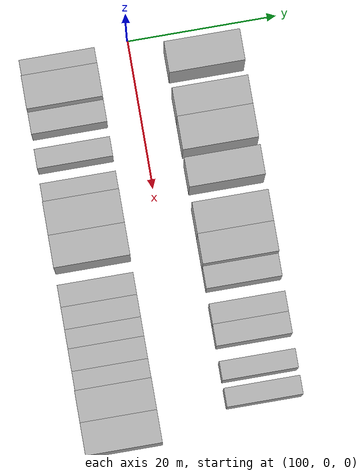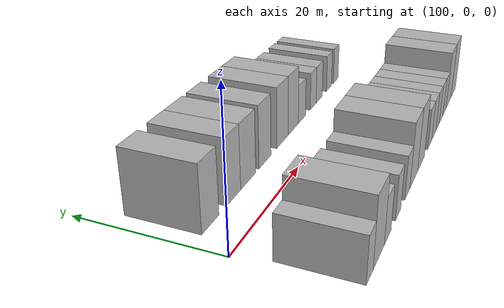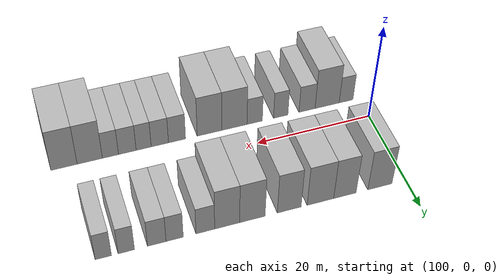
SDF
<sdf version="1.6">
 <world name="default">
  <model name="building_26">
   <static>1</static>
   <pose>104.4458 9.5000 0 0.000000 0.000000 1.570796</pose>
   <link name="link">
    <pose>0 0 4.50 0 0 0</pose>
    <collision name="collision"><geometry><box><size>10.0000 4.1483 9.0000</size></box></geometry></collision>
    <visual name="visual">
     <cast_shadows>0</cast_shadows>
     <geometry><box><size>10.0000 4.1483 9.0000</size></box></geometry>
     <material>
      <script>
       <uri>model://HANNAS_wall/materials/scripts</uri>
       <uri>model://HANNAS_wall/materials/textures</uri>
       <name>vrc/HANNAS_wall</name>
      </script>
     </material>
    </visual>
   </link>
  </model>
  <model name="building_27">
   <static>1</static>
   <pose>110.4118 9.5000 0 0.000000 0.000000 1.570796</pose>
   <link name="link">
    <pose>0 0 4.50 0 0 0</pose>
    <collision name="collision"><geometry><box><size>10.0000 3.7836 9.0000</size></box></geometry></collision>
    <visual name="visual">
     <cast_shadows>0</cast_shadows>
     <geometry><box><size>10.0000 3.7836 9.0000</size></box></geometry>
     <material>
      <script>
       <uri>model://HANNAS_wall/materials/scripts</uri>
       <uri>model://HANNAS_wall/materials/textures</uri>
       <name>vrc/HANNAS_wall</name>
      </script>
     </material>
    </visual>
   </link>
  </model>
  <model name="building_28">
   <static>1</static>
   <pose>114.5267 9.5000 0 0.000000 0.000000 1.570796</pose>
   <link name="link">
    <pose>0 0 4.50 0 0 0</pose>
    <collision name="collision"><geometry><box><size>10.0000 4.4463 9.0000</size></box></geometry></collision>
    <visual name="visual">
     <cast_shadows>0</cast_shadows>
     <geometry><box><size>10.0000 4.4463 9.0000</size></box></geometry>
     <material>
      <script>
       <uri>model://HANNAS_wall/materials/scripts</uri>
       <uri>model://HANNAS_wall/materials/textures</uri>
       <name>vrc/HANNAS_wall</name>
      </script>
     </material>
    </visual>
   </link>
  </model>
  <model name="building_29">
   <static>1</static>
   <pose>119.7096 9.5000 0 0.000000 0.000000 1.570796</pose>
   <link name="link">
    <pose>0 0 4.50 0 0 0</pose>
    <collision name="collision"><geometry><box><size>10.0000 3.9195 9.0000</size></box></geometry></collision>
    <visual name="visual">
     <cast_shadows>0</cast_shadows>
     <geometry><box><size>10.0000 3.9195 9.0000</size></box></geometry>
     <material>
      <script>
       <uri>model://HANNAS_wall/materials/scripts</uri>
       <uri>model://HANNAS_wall/materials/textures</uri>
       <name>vrc/HANNAS_wall</name>
      </script>
     </material>
    </visual>
   </link>
  </model>
  <model name="building_30">
   <static>1</static>
   <pose>125.7354 9.5000 0 0.000000 0.000000 1.570796</pose>
   <link name="link">
    <pose>0 0 4.50 0 0 0</pose>
    <collision name="collision"><geometry><box><size>10.0000 4.1321 9.0000</size></box></geometry></collision>
    <visual name="visual">
     <cast_shadows>0</cast_shadows>
     <geometry><box><size>10.0000 4.1321 9.0000</size></box></geometry>
     <material>
      <script>
       <uri>model://HANNAS_wall/materials/scripts</uri>
       <uri>model://HANNAS_wall/materials/textures</uri>
       <name>vrc/HANNAS_wall</name>
      </script>
     </material>
    </visual>
   </link>
  </model>
  <model name="building_31">
   <static>1</static>
   <pose>129.7963 9.5000 0 0.000000 0.000000 1.570796</pose>
   <link name="link">
    <pose>0 0 4.50 0 0 0</pose>
    <collision name="collision"><geometry><box><size>10.0000 3.9898 9.0000</size></box></geometry></collision>
    <visual name="visual">
     <cast_shadows>0</cast_shadows>
     <geometry><box><size>10.0000 3.9898 9.0000</size></box></geometry>
     <material>
      <script>
       <uri>model://HANNAS_wall/materials/scripts</uri>
       <uri>model://HANNAS_wall/materials/textures</uri>
       <name>vrc/HANNAS_wall</name>
      </script>
     </material>
    </visual>
   </link>
  </model>
  <model name="building_32">
   <static>1</static>
   <pose>133.2743 9.5000 0 0.000000 0.000000 1.570796</pose>
   <link name="link">
    <pose>0 0 3.00 0 0 0</pose>
    <collision name="collision"><geometry><box><size>10.0000 2.9662 6.0000</size></box></geometry></collision>
    <visual name="visual">
     <cast_shadows>0</cast_shadows>
     <geometry><box><size>10.0000 2.9662 6.0000</size></box></geometry>
     <material>
      <script>
       <uri>model://HANNAS_wall/materials/scripts</uri>
       <uri>model://HANNAS_wall/materials/textures</uri>
       <name>vrc/HANNAS_wall</name>
      </script>
     </material>
    </visual>
   </link>
  </model>
  <model name="building_33">
   <static>1</static>
   <pose>138.0981 9.5000 0 0.000000 0.000000 1.570796</pose>
   <link name="link">
    <pose>0 0 3.00 0 0 0</pose>
    <collision name="collision"><geometry><box><size>10.0000 2.6814 6.0000</size></box></geometry></collision>
    <visual name="visual">
     <cast_shadows>0</cast_shadows>
     <geometry><box><size>10.0000 2.6814 6.0000</size></box></geometry>
     <material>
      <script>
       <uri>model://HANNAS_wall/materials/scripts</uri>
       <uri>model://HANNAS_wall/materials/textures</uri>
       <name>vrc/HANNAS_wall</name>
      </script>
     </material>
    </visual>
   </link>
  </model>
  <model name="building_34">
   <static>1</static>
   <pose>140.8822 9.5000 0 0.000000 0.000000 1.570796</pose>
   <link name="link">
    <pose>0 0 3.00 0 0 0</pose>
    <collision name="collision"><geometry><box><size>10.0000 2.8869 6.0000</size></box></geometry></collision>
    <visual name="visual">
     <cast_shadows>0</cast_shadows>
     <geometry><box><size>10.0000 2.8869 6.0000</size></box></geometry>
     <material>
      <script>
       <uri>model://HANNAS_wall/materials/scripts</uri>
       <uri>model://HANNAS_wall/materials/textures</uri>
       <name>vrc/HANNAS_wall</name>
      </script>
     </material>
    </visual>
   </link>
  </model>
  <model name="building_35">
   <static>1</static>
   <pose>145.5830 9.5000 0 0.000000 0.000000 1.570796</pose>
   <link name="link">
    <pose>0 0 3.00 0 0 0</pose>
    <collision name="collision"><geometry><box><size>10.0000 2.5147 6.0000</size></box></geometry></collision>
    <visual name="visual">
     <cast_shadows>0</cast_shadows>
     <geometry><box><size>10.0000 2.5147 6.0000</size></box></geometry>
     <material>
      <script>
       <uri>model://HANNAS_wall/materials/scripts</uri>
       <uri>model://HANNAS_wall/materials/textures</uri>
       <name>vrc/HANNAS_wall</name>
      </script>
     </material>
    </visual>
   </link>
  </model>
  <model name="building_36">
   <static>1</static>
   <pose>149.0827 9.5000 0 0.000000 0.000000 1.570796</pose>
   <link name="link">
    <pose>0 0 3.00 0 0 0</pose>
    <collision name="collision"><geometry><box><size>10.0000 2.4847 6.0000</size></box></geometry></collision>
    <visual name="visual">
     <cast_shadows>0</cast_shadows>
     <geometry><box><size>10.0000 2.4847 6.0000</size></box></geometry>
     <material>
      <script>
       <uri>model://HANNAS_wall/materials/scripts</uri>
       <uri>model://HANNAS_wall/materials/textures</uri>
       <name>vrc/HANNAS_wall</name>
      </script>
     </material>
    </visual>
   </link>
  </model>
  <model name="building_74">
   <static>1</static>
   <pose>102.3624 -9.5000 0 0.000000 0.000000 1.570796</pose>
   <link name="link">
    <pose>0 0 3.00 0 0 0</pose>
    <collision name="collision"><geometry><box><size>10.0000 2.5468 6.0000</size></box></geometry></collision>
    <visual name="visual">
     <cast_shadows>0</cast_shadows>
     <geometry><box><size>10.0000 2.5468 6.0000</size></box></geometry>
     <material>
      <script>
       <uri>model://HANNAS_wall/materials/scripts</uri>
       <uri>model://HANNAS_wall/materials/textures</uri>
       <name>vrc/HANNAS_wall</name>
      </script>
     </material>
    </visual>
   </link>
  </model>
  <model name="building_75">
   <static>1</static>
   <pose>105.8518 -9.5000 0 0.000000 0.000000 1.570796</pose>
   <link name="link">
    <pose>0 0 4.50 0 0 0</pose>
    <collision name="collision"><geometry><box><size>10.0000 4.4319 9.0000</size></box></geometry></collision>
    <visual name="visual">
     <cast_shadows>0</cast_shadows>
     <geometry><box><size>10.0000 4.4319 9.0000</size></box></geometry>
     <material>
      <script>
       <uri>model://HANNAS_wall/materials/scripts</uri>
       <uri>model://HANNAS_wall/materials/textures</uri>
       <name>vrc/HANNAS_wall</name>
      </script>
     </material>
    </visual>
   </link>
  </model>
  <model name="building_76">
   <static>1</static>
   <pose>109.5304 -9.5000 0 0.000000 0.000000 1.570796</pose>
   <link name="link">
    <pose>0 0 3.00 0 0 0</pose>
    <collision name="collision"><geometry><box><size>10.0000 2.9253 6.0000</size></box></geometry></collision>
    <visual name="visual">
     <cast_shadows>0</cast_shadows>
     <geometry><box><size>10.0000 2.9253 6.0000</size></box></geometry>
     <material>
      <script>
       <uri>model://HANNAS_wall/materials/scripts</uri>
       <uri>model://HANNAS_wall/materials/textures</uri>
       <name>vrc/HANNAS_wall</name>
      </script>
     </material>
    </visual>
   </link>
  </model>
  <model name="building_77">
   <static>1</static>
   <pose>114.2888 -9.5000 0 0.000000 0.000000 1.570796</pose>
   <link name="link">
    <pose>0 0 3.00 0 0 0</pose>
    <collision name="collision"><geometry><box><size>10.0000 2.5916 6.0000</size></box></geometry></collision>
    <visual name="visual">
     <cast_shadows>0</cast_shadows>
     <geometry><box><size>10.0000 2.5916 6.0000</size></box></geometry>
     <material>
      <script>
       <uri>model://HANNAS_wall/materials/scripts</uri>
       <uri>model://HANNAS_wall/materials/textures</uri>
       <name>vrc/HANNAS_wall</name>
      </script>
     </material>
    </visual>
   </link>
  </model>
  <model name="building_78">
   <static>1</static>
   <pose>118.9452 -9.5000 0 0.000000 0.000000 1.570796</pose>
   <link name="link">
    <pose>0 0 3.00 0 0 0</pose>
    <collision name="collision"><geometry><box><size>10.0000 2.7211 6.0000</size></box></geometry></collision>
    <visual name="visual">
     <cast_shadows>0</cast_shadows>
     <geometry><box><size>10.0000 2.7211 6.0000</size></box></geometry>
     <material>
      <script>
       <uri>model://HANNAS_wall/materials/scripts</uri>
       <uri>model://HANNAS_wall/materials/textures</uri>
       <name>vrc/HANNAS_wall</name>
      </script>
     </material>
    </visual>
   </link>
  </model>
  <model name="building_79">
   <static>1</static>
   <pose>122.5248 -9.5000 0 0.000000 0.000000 1.570796</pose>
   <link name="link">
    <pose>0 0 4.50 0 0 0</pose>
    <collision name="collision"><geometry><box><size>10.0000 4.4380 9.0000</size></box></geometry></collision>
    <visual name="visual">
     <cast_shadows>0</cast_shadows>
     <geometry><box><size>10.0000 4.4380 9.0000</size></box></geometry>
     <material>
      <script>
       <uri>model://HANNAS_wall/materials/scripts</uri>
       <uri>model://HANNAS_wall/materials/textures</uri>
       <name>vrc/HANNAS_wall</name>
      </script>
     </material>
    </visual>
   </link>
  </model>
  <model name="building_80">
   <static>1</static>
   <pose>126.8825 -9.5000 0 0.000000 0.000000 1.570796</pose>
   <link name="link">
    <pose>0 0 4.50 0 0 0</pose>
    <collision name="collision"><geometry><box><size>10.0000 4.2776 9.0000</size></box></geometry></collision>
    <visual name="visual">
     <cast_shadows>0</cast_shadows>
     <geometry><box><size>10.0000 4.2776 9.0000</size></box></geometry>
     <material>
      <script>
       <uri>model://HANNAS_wall/materials/scripts</uri>
       <uri>model://HANNAS_wall/materials/textures</uri>
       <name>vrc/HANNAS_wall</name>
      </script>
     </material>
    </visual>
   </link>
  </model>
  <model name="building_81">
   <static>1</static>
   <pose>132.4811 -9.5000 0 0.000000 0.000000 1.570796</pose>
   <link name="link">
    <pose>0 0 3.00 0 0 0</pose>
    <collision name="collision"><geometry><box><size>10.0000 2.9197 6.0000</size></box></geometry></collision>
    <visual name="visual">
     <cast_shadows>0</cast_shadows>
     <geometry><box><size>10.0000 2.9197 6.0000</size></box></geometry>
     <material>
      <script>
       <uri>model://HANNAS_wall/materials/scripts</uri>
       <uri>model://HANNAS_wall/materials/textures</uri>
       <name>vrc/HANNAS_wall</name>
      </script>
     </material>
    </visual>
   </link>
  </model>
  <model name="building_82">
   <static>1</static>
   <pose>135.4111 -9.5000 0 0.000000 0.000000 1.570796</pose>
   <link name="link">
    <pose>0 0 3.00 0 0 0</pose>
    <collision name="collision"><geometry><box><size>10.0000 2.9402 6.0000</size></box></geometry></collision>
    <visual name="visual">
     <cast_shadows>0</cast_shadows>
     <geometry><box><size>10.0000 2.9402 6.0000</size></box></geometry>
     <material>
      <script>
       <uri>model://HANNAS_wall/materials/scripts</uri>
       <uri>model://HANNAS_wall/materials/textures</uri>
       <name>vrc/HANNAS_wall</name>
      </script>
     </material>
    </visual>
   </link>
  </model>
  <model name="building_83">
   <static>1</static>
   <pose>138.1497 -9.5000 0 0.000000 0.000000 1.570796</pose>
   <link name="link">
    <pose>0 0 3.00 0 0 0</pose>
    <collision name="collision"><geometry><box><size>10.0000 2.5371 6.0000</size></box></geometry></collision>
    <visual name="visual">
     <cast_shadows>0</cast_shadows>
     <geometry><box><size>10.0000 2.5371 6.0000</size></box></geometry>
     <material>
      <script>
       <uri>model://HANNAS_wall/materials/scripts</uri>
       <uri>model://HANNAS_wall/materials/textures</uri>
       <name>vrc/HANNAS_wall</name>
      </script>
     </material>
    </visual>
   </link>
  </model>
  <model name="building_84">
   <static>1</static>
   <pose>140.8972 -9.5000 0 0.000000 0.000000 1.570796</pose>
   <link name="link">
    <pose>0 0 3.00 0 0 0</pose>
    <collision name="collision"><geometry><box><size>10.0000 2.9578 6.0000</size></box></geometry></collision>
    <visual name="visual">
     <cast_shadows>0</cast_shadows>
     <geometry><box><size>10.0000 2.9578 6.0000</size></box></geometry>
     <material>
      <script>
       <uri>model://HANNAS_wall/materials/scripts</uri>
       <uri>model://HANNAS_wall/materials/textures</uri>
       <name>vrc/HANNAS_wall</name>
      </script>
     </material>
    </visual>
   </link>
  </model>
  <model name="building_85">
   <static>1</static>
   <pose>143.7158 -9.5000 0 0.000000 0.000000 1.570796</pose>
   <link name="link">
    <pose>0 0 3.00 0 0 0</pose>
    <collision name="collision"><geometry><box><size>10.0000 2.6794 6.0000</size></box></geometry></collision>
    <visual name="visual">
     <cast_shadows>0</cast_shadows>
     <geometry><box><size>10.0000 2.6794 6.0000</size></box></geometry>
     <material>
      <script>
       <uri>model://HANNAS_wall/materials/scripts</uri>
       <uri>model://HANNAS_wall/materials/textures</uri>
       <name>vrc/HANNAS_wall</name>
      </script>
     </material>
    </visual>
   </link>
  </model>
  <model name="building_86">
   <static>1</static>
   <pose>147.1366 -9.5000 0 0.000000 0.000000 1.570796</pose>
   <link name="link">
    <pose>0 0 4.50 0 0 0</pose>
    <collision name="collision"><geometry><box><size>10.0000 4.1622 9.0000</size></box></geometry></collision>
    <visual name="visual">
     <cast_shadows>0</cast_shadows>
     <geometry><box><size>10.0000 4.1622 9.0000</size></box></geometry>
     <material>
      <script>
       <uri>model://HANNAS_wall/materials/scripts</uri>
       <uri>model://HANNAS_wall/materials/textures</uri>
       <name>vrc/HANNAS_wall</name>
      </script>
     </material>
    </visual>
   </link>
  </model>
  <model name="building_87">
   <static>1</static>
   <pose>151.3645 -9.5000 0 0.000000 0.000000 1.570796</pose>
   <link name="link">
    <pose>0 0 4.50 0 0 0</pose>
    <collision name="collision"><geometry><box><size>10.0000 4.2937 9.0000</size></box></geometry></collision>
    <visual name="visual">
     <cast_shadows>0</cast_shadows>
     <geometry><box><size>10.0000 4.2937 9.0000</size></box></geometry>
     <material>
      <script>
       <uri>model://HANNAS_wall/materials/scripts</uri>
       <uri>model://HANNAS_wall/materials/textures</uri>
       <name>vrc/HANNAS_wall</name>
      </script>
     </material>
    </visual>
   </link>
  </model>
 </world>
</sdf>
